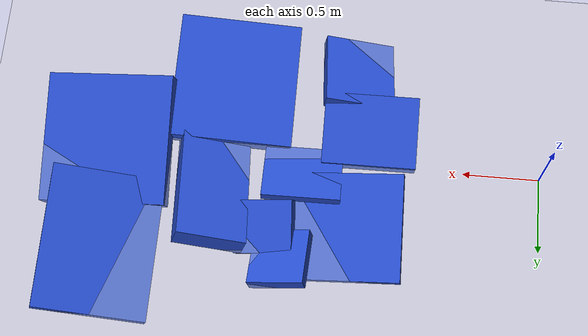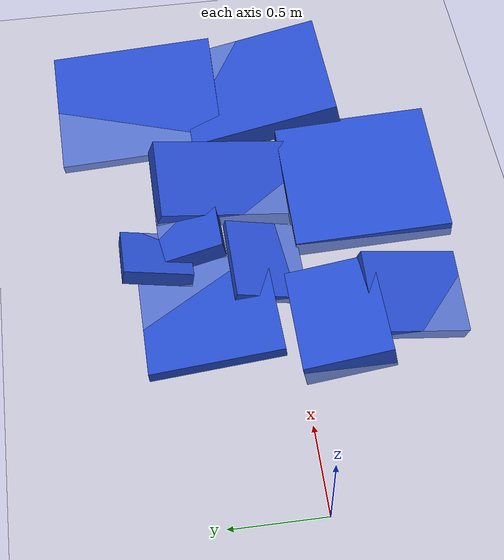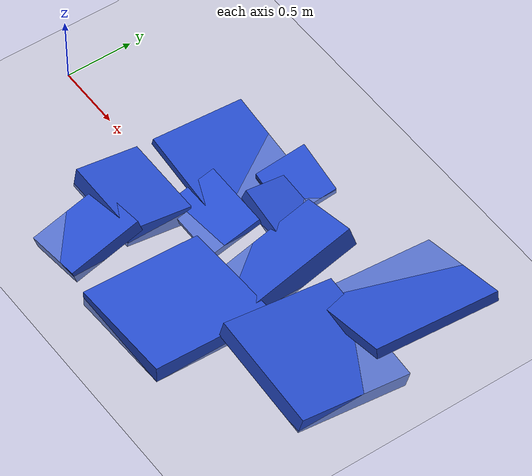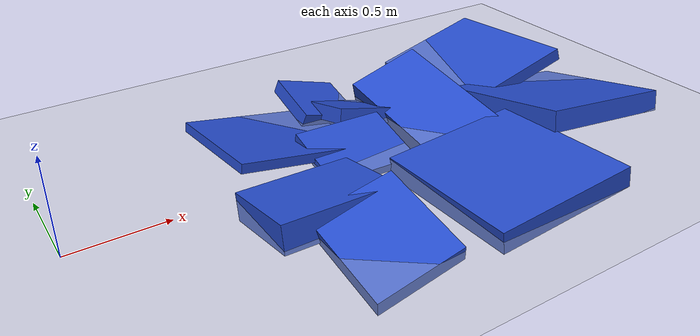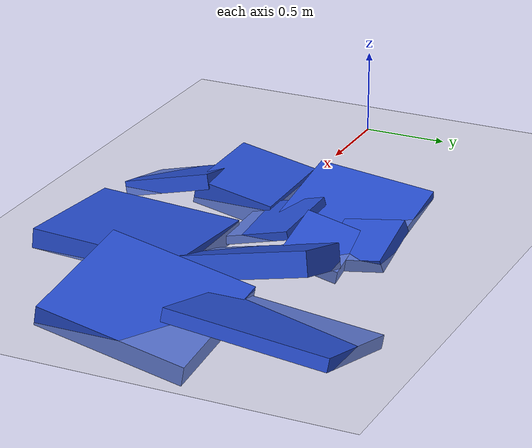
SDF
<?xml version="1.0" ?>
<sdf version="1.4">
    <world name="default">
        <physics type="ode">
            <gravity>0 0 -9.81</gravity>
            <ode>
                <solver>
                    <type>quick</type>
                    <iters>50</iters>
                    <sor>1.4</sor>
                </solver>
                <constraints>
                    <cfm>0.0</cfm>
                    <erp>0.2</erp>
                    <contact_max_correcting_vel>100.0</contact_max_correcting_vel>
                    <contact_surface_layer>0.0</contact_surface_layer>
                </constraints>
            </ode>
            <real_time_update_rate>1000</real_time_update_rate>
            <max_step_size>0.001</max_step_size>
        </physics>
        <!-- A global light source -->
        <include>
            <uri>model://sun</uri>
        </include>
        <!-- A ground plane -->
        <include>
            <uri>model://ground_plane</uri>
        </include>
        <model name="rectangle_0">
            <pose>1.123557 -0.247568 0.000000 -0.182853 0.014228 0.000000</pose>
            <static>true</static>
            <link name="rectangle_0_body">
                <inertial>
                    <mass>1.0</mass>
                    <inertia>
                        <ixx>1.0</ixx>
                        <ixy>0.0</ixy>
                        <ixz>0.0</ixz>
                        <iyy>1.0</iyy>
                        <iyz>0.0</iyz>
                        <izz>1.0</izz>
                    </inertia>
                </inertial>
                <collision name="collision">
                    <geometry>
                        <box>
                            <size>0.623927 0.480062 0.148186</size>
                        </box>
                    </geometry>
                </collision>
                <visual name="visual">
                    <geometry>
                        <box>
                            <size>0.623927 0.480062 0.148186</size>
                        </box>
                    </geometry>
                    <material>
                        <script>
                            <uri>file://media/materials/scripts/gazebo.material</uri>
                            <name>Gazebo/Blue</name>
                        </script>
                    </material>
                </visual>
            </link>
        </model>
        <model name="rectangle_1">
            <pose>2.054813 -0.536085 0.000000 -0.048007 -0.079490 0.000000</pose>
            <static>true</static>
            <link name="rectangle_1_body">
                <inertial>
                    <mass>1.0</mass>
                    <inertia>
                        <ixx>1.0</ixx>
                        <ixy>0.0</ixy>
                        <ixz>0.0</ixz>
                        <iyy>1.0</iyy>
                        <iyz>0.0</iyz>
                        <izz>1.0</izz>
                    </inertia>
                </inertial>
                <collision name="collision">
                    <geometry>
                        <box>
                            <size>0.822046 0.873264 0.114659</size>
                        </box>
                    </geometry>
                </collision>
                <visual name="visual">
                    <geometry>
                        <box>
                            <size>0.822046 0.873264 0.114659</size>
                        </box>
                    </geometry>
                    <material>
                        <script>
                            <uri>file://media/materials/scripts/gazebo.material</uri>
                            <name>Gazebo/Blue</name>
                        </script>
                    </material>
                </visual>
            </link>
        </model>
        <model name="rectangle_2">
            <pose>1.251264 0.429668 0.000000 -0.109040 0.169373 0.000000</pose>
            <static>true</static>
            <link name="rectangle_2_body">
                <inertial>
                    <mass>1.0</mass>
                    <inertia>
                        <ixx>1.0</ixx>
                        <ixy>0.0</ixy>
                        <ixz>0.0</ixz>
                        <iyy>1.0</iyy>
                        <iyz>0.0</iyz>
                        <izz>1.0</izz>
                    </inertia>
                </inertial>
                <collision name="collision">
                    <geometry>
                        <box>
                            <size>0.753302 0.712847 0.051843</size>
                        </box>
                    </geometry>
                </collision>
                <visual name="visual">
                    <geometry>
                        <box>
                            <size>0.753302 0.712847 0.051843</size>
                        </box>
                    </geometry>
                    <material>
                        <script>
                            <uri>file://media/materials/scripts/gazebo.material</uri>
                            <name>Gazebo/Blue</name>
                        </script>
                    </material>
                </visual>
            </link>
        </model>
        <model name="rectangle_3">
            <pose>2.135296 0.204790 0.000000 0.213862 -0.283444 0.000000</pose>
            <static>true</static>
            <link name="rectangle_3_body">
                <inertial>
                    <mass>1.0</mass>
                    <inertia>
                        <ixx>1.0</ixx>
                        <ixy>0.0</ixy>
                        <ixz>0.0</ixz>
                        <iyy>1.0</iyy>
                        <iyz>0.0</iyz>
                        <izz>1.0</izz>
                    </inertia>
                </inertial>
                <collision name="collision">
                    <geometry>
                        <box>
                            <size>0.458475 0.878746 0.142730</size>
                        </box>
                    </geometry>
                </collision>
                <visual name="visual">
                    <geometry>
                        <box>
                            <size>0.458475 0.878746 0.142730</size>
                        </box>
                    </geometry>
                    <material>
                        <script>
                            <uri>file://media/materials/scripts/gazebo.material</uri>
                            <name>Gazebo/Blue</name>
                        </script>
                    </material>
                </visual>
            </link>
        </model>
        <model name="rectangle_4">
            <pose>2.822738 0.670615 0.000000 -0.085726 -0.254070 0.000000</pose>
            <static>true</static>
            <link name="rectangle_4_body">
                <inertial>
                    <mass>1.0</mass>
                    <inertia>
                        <ixx>1.0</ixx>
                        <ixy>0.0</ixy>
                        <ixz>0.0</ixz>
                        <iyy>1.0</iyy>
                        <iyz>0.0</iyz>
                        <izz>1.0</izz>
                    </inertia>
                </inertial>
                <collision name="collision">
                    <geometry>
                        <box>
                            <size>0.732955 0.943117 0.075851</size>
                        </box>
                    </geometry>
                </collision>
                <visual name="visual">
                    <geometry>
                        <box>
                            <size>0.732955 0.943117 0.075851</size>
                        </box>
                    </geometry>
                    <material>
                        <script>
                            <uri>file://media/materials/scripts/gazebo.material</uri>
                            <name>Gazebo/Blue</name>
                        </script>
                    </material>
                </visual>
            </link>
        </model>
        <model name="rectangle_5">
            <pose>1.223894 -0.659950 0.000000 0.243606 -0.201963 0.000000</pose>
            <static>true</static>
            <link name="rectangle_5_body">
                <inertial>
                    <mass>1.0</mass>
                    <inertia>
                        <ixx>1.0</ixx>
                        <ixy>0.0</ixy>
                        <ixz>0.0</ixz>
                        <iyy>1.0</iyy>
                        <iyz>0.0</iyz>
                        <izz>1.0</izz>
                    </inertia>
                </inertial>
                <collision name="collision">
                    <geometry>
                        <box>
                            <size>0.469883 0.541758 0.089643</size>
                        </box>
                    </geometry>
                </collision>
                <visual name="visual">
                    <geometry>
                        <box>
                            <size>0.469883 0.541758 0.089643</size>
                        </box>
                    </geometry>
                    <material>
                        <script>
                            <uri>file://media/materials/scripts/gazebo.material</uri>
                            <name>Gazebo/Blue</name>
                        </script>
                    </material>
                </visual>
            </link>
        </model>
        <model name="rectangle_6">
            <pose>2.861473 -0.050549 0.000000 -0.212700 0.118001 0.000000</pose>
            <static>true</static>
            <link name="rectangle_6_body">
                <inertial>
                    <mass>1.0</mass>
                    <inertia>
                        <ixx>1.0</ixx>
                        <ixy>0.0</ixy>
                        <ixz>0.0</ixz>
                        <iyy>1.0</iyy>
                        <iyz>0.0</iyz>
                        <izz>1.0</izz>
                    </inertia>
                </inertial>
                <collision name="collision">
                    <geometry>
                        <box>
                            <size>0.848495 0.864772 0.119748</size>
                        </box>
                    </geometry>
                </collision>
                <visual name="visual">
                    <geometry>
                        <box>
                            <size>0.848495 0.864772 0.119748</size>
                        </box>
                    </geometry>
                    <material>
                        <script>
                            <uri>file://media/materials/scripts/gazebo.material</uri>
                            <name>Gazebo/Blue</name>
                        </script>
                    </material>
                </visual>
            </link>
        </model>
        <model name="rectangle_7">
            <pose>1.550163 0.088717 0.000000 0.257564 0.023370 0.000000</pose>
            <static>true</static>
            <link name="rectangle_7_body">
                <inertial>
                    <mass>1.0</mass>
                    <inertia>
                        <ixx>1.0</ixx>
                        <ixy>0.0</ixy>
                        <ixz>0.0</ixz>
                        <iyy>1.0</iyy>
                        <iyz>0.0</iyz>
                        <izz>1.0</izz>
                    </inertia>
                </inertial>
                <collision name="collision">
                    <geometry>
                        <box>
                            <size>0.517974 0.397869 0.050829</size>
                        </box>
                    </geometry>
                </collision>
                <visual name="visual">
                    <geometry>
                        <box>
                            <size>0.517974 0.397869 0.050829</size>
                        </box>
                    </geometry>
                    <material>
                        <script>
                            <uri>file://media/materials/scripts/gazebo.material</uri>
                            <name>Gazebo/Blue</name>
                        </script>
                    </material>
                </visual>
            </link>
        </model>
        <model name="rectangle_8">
            <pose>1.768292 0.471527 0.000000 -0.246389 0.248449 0.000000</pose>
            <static>true</static>
            <link name="rectangle_8_body">
                <inertial>
                    <mass>1.0</mass>
                    <inertia>
                        <ixx>1.0</ixx>
                        <ixy>0.0</ixy>
                        <ixz>0.0</ixz>
                        <iyy>1.0</iyy>
                        <iyz>0.0</iyz>
                        <izz>1.0</izz>
                    </inertia>
                </inertial>
                <collision name="collision">
                    <geometry>
                        <box>
                            <size>0.385330 0.345889 0.086762</size>
                        </box>
                    </geometry>
                </collision>
                <visual name="visual">
                    <geometry>
                        <box>
                            <size>0.385330 0.345889 0.086762</size>
                        </box>
                    </geometry>
                    <material>
                        <script>
                            <uri>file://media/materials/scripts/gazebo.material</uri>
                            <name>Gazebo/Blue</name>
                        </script>
                    </material>
                </visual>
            </link>
        </model>
        <model name="rectangle_9">
            <pose>1.650939 0.676727 0.000000 0.188315 0.290035 0.000000</pose>
            <static>true</static>
            <link name="rectangle_9_body">
                <inertial>
                    <mass>1.0</mass>
                    <inertia>
                        <ixx>1.0</ixx>
                        <ixy>0.0</ixy>
                        <ixz>0.0</ixz>
                        <iyy>1.0</iyy>
                        <iyz>0.0</iyz>
                        <izz>1.0</izz>
                    </inertia>
                </inertial>
                <collision name="collision">
                    <geometry>
                        <box>
                            <size>0.372327 0.378291 0.079304</size>
                        </box>
                    </geometry>
                </collision>
                <visual name="visual">
                    <geometry>
                        <box>
                            <size>0.372327 0.378291 0.079304</size>
                        </box>
                    </geometry>
                    <material>
                        <script>
                            <uri>file://media/materials/scripts/gazebo.material</uri>
                            <name>Gazebo/Blue</name>
                        </script>
                    </material>
                </visual>
            </link>
        </model>
    </world>
</sdf>
